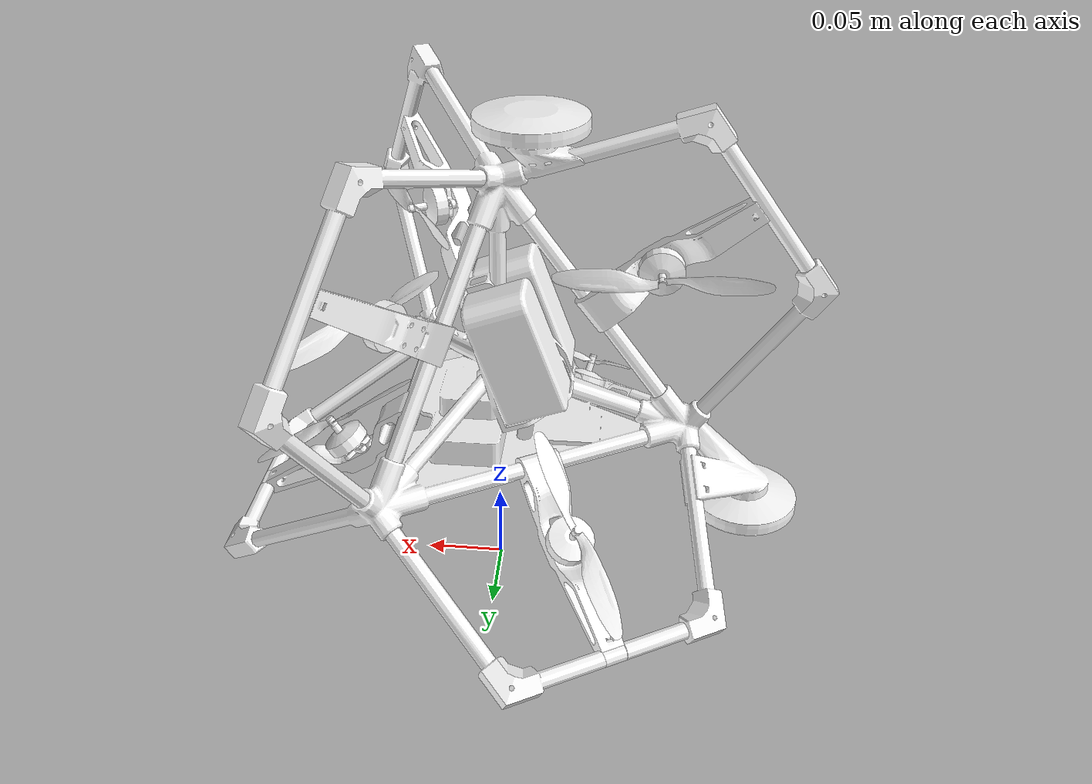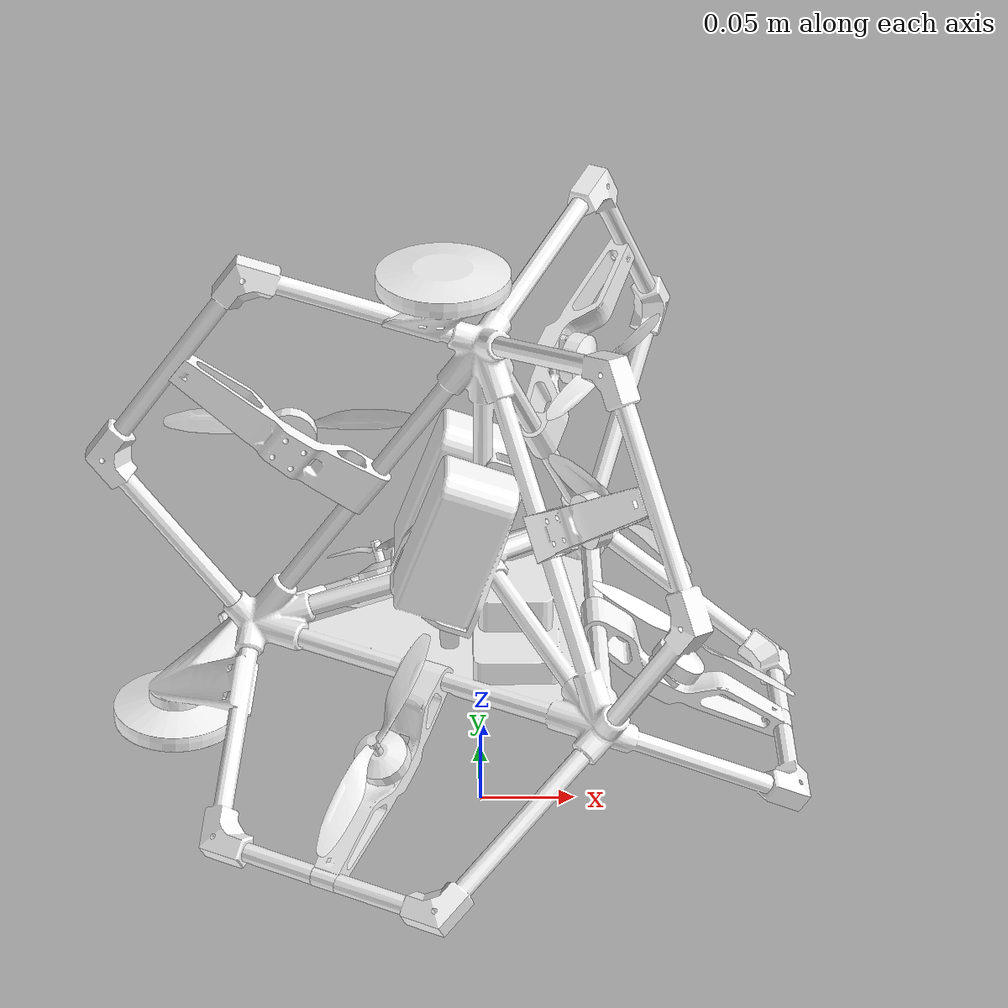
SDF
<sdf version="1.7">
 <world name="omnicopter_runway">
  <plugin filename="gz-sim-physics-system" name="gz::sim::systems::Physics"/>
  <plugin filename="gz-sim-user-commands-system" name="gz::sim::systems::UserCommands"/>
  <plugin filename="gz-sim-scene-broadcaster-system" name="gz::sim::systems::SceneBroadcaster"/>
  <plugin filename="gz-sim-imu-system" name="gz::sim::systems::Imu"/>
  <plugin filename="gz-sim-forcetorque-system" name="gz::sim::systems::ForceTorque"/>
  <scene><ambient>1.0 1.0 1.0</ambient><background>0.8 0.8 0.8</background></scene>
  <light type="directional" name="sun">
   <pose>0 0 10 0 0 0</pose>
   <diffuse>0.8 0.8 0.8 1</diffuse>
   <specular>0.8 0.8 0.8 1</specular>
   <attenuation>
    <range>1000</range>
    <constant>0.9</constant>
    <linear>0.01</linear>
    <quadratic>0.001</quadratic>
   </attenuation>
   <direction>-0.5 0.1 -0.9</direction>
  </light>
  <include><pose>0 0 0.15 0 0 0</pose><uri>model://omnicopter</uri></include>
 </world>
</sdf>

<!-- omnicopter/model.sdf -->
<sdf version='1.7'>
  <model name='omnicopter'>
    <static>0</static>
    <self_collide>0</self_collide>

    <link name='base_link'>
      <inertial>
        <pose>0 0 0 0 0 0</pose>
        <mass>1.5</mass>
        <inertia>
          <ixx>0.009375</ixx>
          <ixy>0</ixy>
          <ixz>0</ixz>
          <iyy>0.009375</iyy>
          <iyz>0</iyz>
          <izz>0.009375</izz>
        </inertia>
      </inertial>
      <collision name='collision'>
        <pose>0 0 0 0 0 0</pose>
        <geometry>
          <box>
            <size>0.25 0.25 0.25</size>
          </box>
        </geometry>
      </collision>
      <visual name='base_visual'>
        <pose>0 0 0 0 0 0</pose>
        <geometry>
          <mesh>
            <scale>1 1 1</scale>
            <uri>model://omnicopter/meshes/omnicopter_base.dae</uri>
          </mesh>
        </geometry>
         <material>
          <ambient>1 1 1</ambient>
          <diffuse>1 1 1</diffuse>
          <specular>0.3 0.3 0.3</specular>
          <pbr>
            <metal>
              <albedo_map>model://omnicopter/materials/textures/plastic006/plastic006_1k_diffuse.jpg</albedo_map>
              <normal_map>model://omnicopter/materials/textures/plastic006/plastic006_1k_normal.jpg</normal_map>
              <roughness_map>model://omnicopter/materials/textures/plastic006/plastic006_1k_roughness.jpg</roughness_map>
              <roughness>0.5</roughness>
              <metalness>0.5</metalness>
            </metal>
          </pbr>
        </material>
     </visual>
      <visual name='tailboom1_visual'>
        <pose>0 0 0 0 0 0</pose>
        <geometry>
          <mesh>
            <scale>1 1 1</scale>
            <uri>model://omnicopter/meshes/tailboom1.dae</uri>
          </mesh>
        </geometry>
        <material>
          <ambient>1 1 1</ambient>
          <diffuse>1 1 1</diffuse>
          <specular>0.3 0.3 0.3</specular>
          <pbr>
            <metal>
              <albedo_map>model://omnicopter/materials/textures/plastic007/plastic007_1k_diffuse.jpg</albedo_map>
              <normal_map>model://omnicopter/materials/textures/plastic007/plastic007_1k_normal.jpg</normal_map>
              <roughness_map>model://omnicopter/materials/textures/plastic007/plastic007_1k_roughness.jpg</roughness_map>
              <roughness>0.5</roughness>
              <metalness>0.5</metalness>
            </metal>
          </pbr>
        </material>
      </visual>
      <visual name='tailboom2_visual'>
        <pose>0 0 0 0 0 0</pose>
        <geometry>
          <mesh>
            <scale>1 1 1</scale>
            <uri>model://omnicopter/meshes/tailboom2.dae</uri>
          </mesh>
        </geometry>
        <material>
          <ambient>1 1 1</ambient>
          <diffuse>1 1 1</diffuse>
          <specular>0.3 0.3 0.3</specular>
          <pbr>
            <metal>
              <albedo_map>model://omnicopter/materials/textures/plastic007/plastic007_1k_diffuse.jpg</albedo_map>
              <normal_map>model://omnicopter/materials/textures/plastic007/plastic007_1k_normal.jpg</normal_map>
              <roughness_map>model://omnicopter/materials/textures/plastic007/plastic007_1k_roughness.jpg</roughness_map>
              <roughness>0.5</roughness>
              <metalness>0.5</metalness>
            </metal>
          </pbr>
        </material>
      </visual>
      <visual name='tailboom3_visual'>
        <pose>0 0 0 0 0 0</pose>
        <geometry>
          <mesh>
            <scale>1 1 1</scale>
            <uri>model://omnicopter/meshes/tailboom3.dae</uri>
          </mesh>
        </geometry>
        <material>
          <ambient>1 1 1</ambient>
          <diffuse>1 1 1</diffuse>
          <specular>0.3 0.3 0.3</specular>
          <pbr>
            <metal>
              <albedo_map>model://omnicopter/materials/textures/plastic007/plastic007_1k_diffuse.jpg</albedo_map>
              <normal_map>model://omnicopter/materials/textures/plastic007/plastic007_1k_normal.jpg</normal_map>
              <roughness_map>model://omnicopter/materials/textures/plastic007/plastic007_1k_roughness.jpg</roughness_map>
              <roughness>0.5</roughness>
              <metalness>0.5</metalness>
            </metal>
          </pbr>
        </material>
      </visual>
      <visual name='tailboom4_visual'>
        <pose>0 0 0 0 0 0</pose>
        <geometry>
          <mesh>
            <scale>1 1 1</scale>
            <uri>model://omnicopter/meshes/tailboom4.dae</uri>
          </mesh>
        </geometry>
        <material>
          <ambient>1 1 1</ambient>
          <diffuse>1 1 1</diffuse>
          <specular>0.3 0.3 0.3</specular>
          <pbr>
            <metal>
              <albedo_map>model://omnicopter/materials/textures/plastic007/plastic007_1k_diffuse.jpg</albedo_map>
              <normal_map>model://omnicopter/materials/textures/plastic007/plastic007_1k_normal.jpg</normal_map>
              <roughness_map>model://omnicopter/materials/textures/plastic007/plastic007_1k_roughness.jpg</roughness_map>
              <roughness>0.5</roughness>
              <metalness>0.5</metalness>
            </metal>
          </pbr>
        </material>
      </visual>
      <visual name='tailboom5_visual'>
        <pose>0 0 0 0 0 0</pose>
        <geometry>
          <mesh>
            <scale>1 1 1</scale>
            <uri>model://omnicopter/meshes/tailboom5.dae</uri>
          </mesh>
        </geometry>
        <material>
          <ambient>1 1 1</ambient>
          <diffuse>1 1 1</diffuse>
          <specular>0.3 0.3 0.3</specular>
          <pbr>
            <metal>
              <albedo_map>model://omnicopter/materials/textures/plastic007/plastic007_1k_diffuse.jpg</albedo_map>
              <normal_map>model://omnicopter/materials/textures/plastic007/plastic007_1k_normal.jpg</normal_map>
              <roughness_map>model://omnicopter/materials/textures/plastic007/plastic007_1k_roughness.jpg</roughness_map>
              <roughness>0.5</roughness>
              <metalness>0.5</metalness>
            </metal>
          </pbr>
        </material>
      </visual>
      <visual name='tailboom6_visual'>
        <pose>0 0 0 0 0 0</pose>
        <geometry>
          <mesh>
            <scale>1 1 1</scale>
            <uri>model://omnicopter/meshes/tailboom6.dae</uri>
          </mesh>
        </geometry>
        <material>
          <ambient>1 1 1</ambient>
          <diffuse>1 1 1</diffuse>
          <specular>0.3 0.3 0.3</specular>
          <pbr>
            <metal>
              <albedo_map>model://omnicopter/materials/textures/plastic007/plastic007_1k_diffuse.jpg</albedo_map>
              <normal_map>model://omnicopter/materials/textures/plastic007/plastic007_1k_normal.jpg</normal_map>
              <roughness_map>model://omnicopter/materials/textures/plastic007/plastic007_1k_roughness.jpg</roughness_map>
              <roughness>0.5</roughness>
              <metalness>0.5</metalness>
            </metal>
          </pbr>
        </material>
      </visual>
    </link>

    <link name='motor_1_link'>
      <pose relative_to='motor_1_joint'>0 0 0.018 0 0 0</pose>
      <inertial>
        <pose>0 0 -0.018 0 0 0</pose>
        <mass>0.025</mass>
        <inertia>
          <ixx>9.75e-06</ixx>
          <ixy>0</ixy>
          <ixz>0</ixz>
          <iyy>0.000166704</iyy>
          <iyz>0</iyz>
          <izz>0.000167604</izz>
        </inertia>
      </inertial>
      <collision name='collision'>
        <pose>0 0 0 0 0 0</pose>
        <geometry>
          <cylinder>
            <length>0.002</length>
            <radius>0.05</radius>
          </cylinder>
        </geometry>
      </collision>
      <visual name='spinner_visual'>
        <pose>0 0 -0.01 0 0 0</pose>
        <geometry>
          <mesh>
            <scale>1 1 1</scale>
            <uri>model://omnicopter/meshes/spinner.dae</uri>
          </mesh>
        </geometry>
        <material>
          <ambient>1 1 1</ambient>
          <diffuse>1 1 1</diffuse>
          <specular>1 1 1</specular>
          <pbr>
            <metal>
              <albedo_map>model://omnicopter/materials/textures/red_metal/red_metal_diffuse.jpg</albedo_map>
              <metalness_map>model://omnicopter/materials/textures/red_metal/red_metal_metallic.jpg</metalness_map>
              <normal_map>model://omnicopter/materials/textures/red_metal/red_metal_normal.jpg</normal_map>
              <roughness_map>model://omnicopter/materials/textures/red_metal/red_metal_roughness.jpg</roughness_map>
              <roughness>1.0</roughness>
              <metalness>1.0</metalness>
            </metal>
          </pbr>
        </material>
      </visual>
      <visual name='prop_visual'>
        <pose>0 0 0 0 0 0</pose>
        <geometry>
          <mesh>
            <scale>0.5 0.5 0.5</scale>
            <uri>model://omnicopter/meshes/iris_prop_cw.dae</uri>
          </mesh>
        </geometry>
        <material>
          <ambient>1 1 1</ambient>
          <diffuse>1 1 1</diffuse>
          <specular>0.3 0.3 0.3</specular>
          <pbr>
            <metal>
              <albedo_map>model://omnicopter/materials/textures/plastic008/plastic008_1k_diffuse.jpg</albedo_map>
              <normal_map>model://omnicopter/materials/textures/plastic008/plastic008_1k_normal.jpg</normal_map>
              <roughness_map>model://omnicopter/materials/textures/plastic008/plastic008_1k_roughness.jpg</roughness_map>
              <roughness>0.5</roughness>
              <metalness>0.5</metalness>
            </metal>
          </pbr>
        </material>
      </visual>
    </link>
    <joint name='motor_1_joint' type='revolute'>
      <pose relative_to='base_link'>0.10147914 0. -0.06590132 0. 0.57595865 0.</pose>
      <parent>base_link</parent>
      <child>motor_1_link</child>
      <axis>
        <xyz>0 0 1</xyz>
        <limit>
          <lower>-1e16</lower>
          <upper>1e16</upper>
        </limit>
        <dynamics>
          <damping>0.002</damping>
        </dynamics>
      </axis>
      <sensor name="force_torque_sensor" type="force_torque">
        <update_rate>30</update_rate>
        <always_on>true</always_on>
        <visualize>true</visualize>
        <force_torque>
          <frame>sensor</frame>
          <measure_direction>child_to_parent</measure_direction>
        </force_torque>
      </sensor>
    </joint>

    <link name='motor_2_link'>
      <pose relative_to='motor_2_joint'>0 0 0.018 0 0 0</pose>
      <inertial>
        <pose>0 0 -0.018 0 0 0</pose>
        <mass>0.025</mass>
        <inertia>
          <ixx>9.75e-06</ixx>
          <ixy>0</ixy>
          <ixz>0</ixz>
          <iyy>0.000166704</iyy>
          <iyz>0</iyz>
          <izz>0.000167604</izz>
        </inertia>
      </inertial>
      <collision name='collision'>
        <pose>0 0 0 0 0 0</pose>
        <geometry>
          <cylinder>
            <length>0.002</length>
            <radius>0.05</radius>
          </cylinder>
        </geometry>
      </collision>
      <visual name='spinner_visual'>
        <pose>0 0 -0.01 0 0 0</pose>
        <geometry>
          <mesh>
            <scale>1 1 1</scale>
            <uri>model://omnicopter/meshes/spinner.dae</uri>
          </mesh>
        </geometry>
        <material>
          <ambient>1 1 1</ambient>
          <diffuse>1 1 1</diffuse>
          <specular>1 1 1</specular>
          <pbr>
            <metal>
              <albedo_map>model://omnicopter/materials/textures/red_metal/red_metal_diffuse.jpg</albedo_map>
              <metalness_map>model://omnicopter/materials/textures/red_metal/red_metal_metallic.jpg</metalness_map>
              <normal_map>model://omnicopter/materials/textures/red_metal/red_metal_normal.jpg</normal_map>
              <roughness_map>model://omnicopter/materials/textures/red_metal/red_metal_roughness.jpg</roughness_map>
              <roughness>1.0</roughness>
              <metalness>1.0</metalness>
            </metal>
          </pbr>
        </material>
      </visual>
      <visual name='prop_visual'>
        <pose>0 0 0 0 0 0</pose>
        <geometry>
          <mesh>
            <scale>0.5 0.5 0.5</scale>
            <uri>model://omnicopter/meshes/iris_prop_cw.dae</uri>
          </mesh>
        </geometry>
        <material>
          <ambient>1 1 1</ambient>
          <diffuse>1 1 1</diffuse>
          <specular>0.3 0.3 0.3</specular>
          <pbr>
            <metal>
              <albedo_map>model://omnicopter/materials/textures/plastic008/plastic008_1k_diffuse.jpg</albedo_map>
              <normal_map>model://omnicopter/materials/textures/plastic008/plastic008_1k_normal.jpg</normal_map>
              <roughness_map>model://omnicopter/materials/textures/plastic008/plastic008_1k_roughness.jpg</roughness_map>
              <roughness>0.5</roughness>
              <metalness>0.5</metalness>
            </metal>
          </pbr>
        </material>
      </visual>
    </link>
    <joint name='motor_2_joint' type='revolute'>
      <pose relative_to='base_link'>-0.05073957 -0.08788351 -0.06590132 3.30947295e-17 5.75958653e-01 -2.09439510e+00</pose>
      <parent>base_link</parent>
      <child>motor_2_link</child>
      <axis>
        <xyz>0 0 1</xyz>
        <limit>
          <lower>-1e16</lower>
          <upper>1e16</upper>
        </limit>
        <dynamics>
          <damping>0.002</damping>
        </dynamics>
      </axis>
      <sensor name="force_torque_sensor" type="force_torque">
        <update_rate>30</update_rate>
        <always_on>true</always_on>
        <visualize>true</visualize>
        <force_torque>
          <frame>sensor</frame>
          <measure_direction>child_to_parent</measure_direction>
        </force_torque>
      </sensor>
    </joint>

    <link name='motor_3_link'>
      <pose relative_to='motor_3_joint'>0 0 0.018 0 0 0</pose>
      <inertial>
        <pose>0 0 -0.018 0 0 0</pose>
        <mass>0.025</mass>
        <inertia>
          <ixx>9.75e-06</ixx>
          <ixy>0</ixy>
          <ixz>0</ixz>
          <iyy>0.000166704</iyy>
          <iyz>0</iyz>
          <izz>0.000167604</izz>
        </inertia>
      </inertial>
      <collision name='collision'>
        <pose>0 0 0 0 0 0</pose>
        <geometry>
          <cylinder>
            <length>0.002</length>
            <radius>0.05</radius>
          </cylinder>
        </geometry>
      </collision>
      <visual name='spinner_visual'>
        <pose>0 0 -0.01 0 0 0</pose>
        <geometry>
          <mesh>
            <scale>1 1 1</scale>
            <uri>model://omnicopter/meshes/spinner.dae</uri>
          </mesh>
        </geometry>
        <material>
          <ambient>1 1 1</ambient>
          <diffuse>1 1 1</diffuse>
          <specular>1 1 1</specular>
          <pbr>
            <metal>
              <albedo_map>model://omnicopter/materials/textures/red_metal/red_metal_diffuse.jpg</albedo_map>
              <metalness_map>model://omnicopter/materials/textures/red_metal/red_metal_metallic.jpg</metalness_map>
              <normal_map>model://omnicopter/materials/textures/red_metal/red_metal_normal.jpg</normal_map>
              <roughness_map>model://omnicopter/materials/textures/red_metal/red_metal_roughness.jpg</roughness_map>
              <roughness>1.0</roughness>
              <metalness>1.0</metalness>
            </metal>
          </pbr>
        </material>
      </visual>
      <visual name='prop_visual'>
        <pose>0 0 0 0 0 0</pose>
        <geometry>
          <mesh>
            <scale>0.5 0.5 0.5</scale>
            <uri>model://omnicopter/meshes/iris_prop_ccw.dae</uri>
          </mesh>
        </geometry>
        <material>
          <ambient>1 1 1</ambient>
          <diffuse>1 1 1</diffuse>
          <specular>0.3 0.3 0.3</specular>
          <pbr>
            <metal>
              <albedo_map>model://omnicopter/materials/textures/plastic008/plastic008_1k_diffuse.jpg</albedo_map>
              <normal_map>model://omnicopter/materials/textures/plastic008/plastic008_1k_normal.jpg</normal_map>
              <roughness_map>model://omnicopter/materials/textures/plastic008/plastic008_1k_roughness.jpg</roughness_map>
              <roughness>0.5</roughness>
              <metalness>0.5</metalness>
            </metal>
          </pbr>
        </material>
      </visual>
    </link>
    <joint name='motor_3_joint' type='revolute'>
      <pose relative_to='base_link'>-0.05073957 0.08788351 -0.06590132 -3.30947295e-17 5.75958653e-01 2.09439510e+00</pose>
      <parent>base_link</parent>
      <child>motor_3_link</child>
      <axis>
        <xyz>0 0 1</xyz>
        <limit>
          <lower>-1e16</lower>
          <upper>1e16</upper>
        </limit>
        <dynamics>
          <damping>0.002</damping>
        </dynamics>
      </axis>
      <sensor name="force_torque_sensor" type="force_torque">
        <update_rate>30</update_rate>
        <always_on>true</always_on>
        <visualize>true</visualize>
        <force_torque>
          <frame>sensor</frame>
          <measure_direction>child_to_parent</measure_direction>
        </force_torque>
      </sensor>
    </joint>

    <link name='motor_4_link'>
      <pose relative_to='motor_4_joint'>0 0 0.018 0 0 0</pose>
      <inertial>
        <pose>0 0 -0.018 0 0 0</pose>
        <mass>0.025</mass>
        <inertia>
          <ixx>9.75e-06</ixx>
          <ixy>0</ixy>
          <ixz>0</ixz>
          <iyy>0.000166704</iyy>
          <iyz>0</iyz>
          <izz>0.000167604</izz>
        </inertia>
      </inertial>
      <collision name='collision'>
        <pose>0 0 0 0 0 0</pose>
        <geometry>
          <cylinder>
            <length>0.002</length>
            <radius>0.05</radius>
          </cylinder>
        </geometry>
      </collision>
      <visual name='spinner_visual'>
        <pose>0 0 -0.01 0 0 0</pose>
        <geometry>
          <mesh>
            <scale>1 1 1</scale>
            <uri>model://omnicopter/meshes/spinner.dae</uri>
          </mesh>
        </geometry>
        <material>
          <ambient>1 1 1</ambient>
          <diffuse>1 1 1</diffuse>
          <specular>1 1 1</specular>
          <pbr>
            <metal>
              <albedo_map>model://omnicopter/materials/textures/red_metal/red_metal_diffuse.jpg</albedo_map>
              <metalness_map>model://omnicopter/materials/textures/red_metal/red_metal_metallic.jpg</metalness_map>
              <normal_map>model://omnicopter/materials/textures/red_metal/red_metal_normal.jpg</normal_map>
              <roughness_map>model://omnicopter/materials/textures/red_metal/red_metal_roughness.jpg</roughness_map>
              <roughness>1.0</roughness>
              <metalness>1.0</metalness>
            </metal>
          </pbr>
        </material>
      </visual>
      <visual name='prop_visual'>
        <pose>0 0 0 0 0 0</pose>
        <geometry>
          <mesh>
            <scale>0.5 0.5 0.5</scale>
            <uri>model://omnicopter/meshes/iris_prop_ccw.dae</uri>
          </mesh>
        </geometry>
        <material>
          <ambient>1 1 1</ambient>
          <diffuse>1 1 1</diffuse>
          <specular>0.3 0.3 0.3</specular>
          <pbr>
            <metal>
              <albedo_map>model://omnicopter/materials/textures/plastic008/plastic008_1k_diffuse.jpg</albedo_map>
              <normal_map>model://omnicopter/materials/textures/plastic008/plastic008_1k_normal.jpg</normal_map>
              <roughness_map>model://omnicopter/materials/textures/plastic008/plastic008_1k_roughness.jpg</roughness_map>
              <roughness>0.5</roughness>
              <metalness>0.5</metalness>
            </metal>
          </pbr>
        </material>
      </visual>
    </link>
    <joint name='motor_4_joint' type='revolute'>
      <pose relative_to='base_link'>0.04894553 -0.08477614 0.07112202 1.57079633 0. 2.0943951</pose>
      <parent>base_link</parent>
      <child>motor_4_link</child>
      <axis>
        <xyz>0 0 1</xyz>
        <limit>
          <lower>-1e16</lower>
          <upper>1e16</upper>
        </limit>
        <dynamics>
          <damping>0.002</damping>
        </dynamics>
      </axis>
      <sensor name="force_torque_sensor" type="force_torque">
        <update_rate>30</update_rate>
        <always_on>true</always_on>
        <visualize>true</visualize>
        <force_torque>
          <frame>sensor</frame>
          <measure_direction>child_to_parent</measure_direction>
        </force_torque>
      </sensor>
    </joint>

    <link name='motor_5_link'>
      <pose relative_to='motor_5_joint'>0 0 0.018 0 0 0</pose>
      <inertial>
        <pose>0 0 -0.018 0 0 0</pose>
        <mass>0.025</mass>
        <inertia>
          <ixx>9.75e-06</ixx>
          <ixy>0</ixy>
          <ixz>0</ixz>
          <iyy>0.000166704</iyy>
          <iyz>0</iyz>
          <izz>0.000167604</izz>
        </inertia>
      </inertial>
      <collision name='collision'>
        <pose>0 0 0 0 0 0</pose>
        <geometry>
          <cylinder>
            <length>0.002</length>
            <radius>0.05</radius>
          </cylinder>
        </geometry>
      </collision>
      <visual name='spinner_visual'>
        <pose>0 0 -0.01 0 0 0</pose>
        <geometry>
          <mesh>
            <scale>1 1 1</scale>
            <uri>model://omnicopter/meshes/spinner.dae</uri>
          </mesh>
        </geometry>
        <material>
          <ambient>1 1 1</ambient>
          <diffuse>1 1 1</diffuse>
          <specular>1 1 1</specular>
          <pbr>
            <metal>
              <albedo_map>model://omnicopter/materials/textures/red_metal/red_metal_diffuse.jpg</albedo_map>
              <metalness_map>model://omnicopter/materials/textures/red_metal/red_metal_metallic.jpg</metalness_map>
              <normal_map>model://omnicopter/materials/textures/red_metal/red_metal_normal.jpg</normal_map>
              <roughness_map>model://omnicopter/materials/textures/red_metal/red_metal_roughness.jpg</roughness_map>
              <roughness>1.0</roughness>
              <metalness>1.0</metalness>
            </metal>
          </pbr>
        </material>
      </visual>
      <visual name='prop_visual'>
        <pose>0 0 0 0 0 0</pose>
        <geometry>
          <mesh>
            <scale>0.5 0.5 0.5</scale>
            <uri>model://omnicopter/meshes/iris_prop_ccw.dae</uri>
          </mesh>
        </geometry>
        <material>
          <ambient>1 1 1</ambient>
          <diffuse>1 1 1</diffuse>
          <specular>0.3 0.3 0.3</specular>
          <pbr>
            <metal>
              <albedo_map>model://omnicopter/materials/textures/plastic008/plastic008_1k_diffuse.jpg</albedo_map>
              <normal_map>model://omnicopter/materials/textures/plastic008/plastic008_1k_normal.jpg</normal_map>
              <roughness_map>model://omnicopter/materials/textures/plastic008/plastic008_1k_roughness.jpg</roughness_map>
              <roughness>0.5</roughness>
              <metalness>0.5</metalness>
            </metal>
          </pbr>
        </material>
      </visual>
    </link>
    <joint name='motor_5_joint' type='revolute'>
      <pose relative_to='base_link'>-0.09789106 0. 0.07112202 -1.57079633 0. 0.</pose>
      <parent>base_link</parent>
      <child>motor_5_link</child>
      <axis>
        <xyz>0 0 1</xyz>
        <limit>
          <lower>-1e16</lower>
          <upper>1e16</upper>
        </limit>
        <dynamics>
          <damping>0.002</damping>
        </dynamics>
      </axis>
      <sensor name="force_torque_sensor" type="force_torque">
        <update_rate>30</update_rate>
        <always_on>true</always_on>
        <visualize>true</visualize>
        <force_torque>
          <frame>sensor</frame>
          <measure_direction>child_to_parent</measure_direction>
        </force_torque>
      </sensor>
    </joint>

    <link name='motor_6_link'>
      <pose relative_to='motor_6_joint'>0 0 0.018 0 0 0</pose>
      <inertial>
        <pose>0 0 -0.018 0 0 0</pose>
        <mass>0.025</mass>
        <inertia>
          <ixx>9.75e-06</ixx>
          <ixy>0</ixy>
          <ixz>0</ixz>
          <iyy>0.000166704</iyy>
          <iyz>0</iyz>
          <izz>0.000167604</izz>
        </inertia>
      </inertial>
      <collision name='collision'>
        <pose>0 0 0 0 0 0</pose>
        <geometry>
          <cylinder>
            <length>0.002</length>
            <radius>0.05</radius>
          </cylinder>
        </geometry>
      </collision>
      <visual name='spinner_visual'>
        <pose>0 0 -0.01 0 0 0</pose>
        <geometry>
          <mesh>
            <scale>1 1 1</scale>
            <uri>model://omnicopter/meshes/spinner.dae</uri>
          </mesh>
        </geometry>
        <material>
          <ambient>1 1 1</ambient>
          <diffuse>1 1 1</diffuse>
          <specular>1 1 1</specular>
          <pbr>
            <metal>
              <albedo_map>model://omnicopter/materials/textures/red_metal/red_metal_diffuse.jpg</albedo_map>
              <metalness_map>model://omnicopter/materials/textures/red_metal/red_metal_metallic.jpg</metalness_map>
              <normal_map>model://omnicopter/materials/textures/red_metal/red_metal_normal.jpg</normal_map>
              <roughness_map>model://omnicopter/materials/textures/red_metal/red_metal_roughness.jpg</roughness_map>
              <roughness>1.0</roughness>
              <metalness>1.0</metalness>
            </metal>
          </pbr>
        </material>
      </visual>
      <visual name='prop_visual'>
        <pose>0 0 0 0 0 0</pose>
        <geometry>
          <mesh>
            <scale>0.5 0.5 0.5</scale>
            <uri>model://omnicopter/meshes/iris_prop_ccw.dae</uri>
          </mesh>
        </geometry>
        <material>
          <ambient>1 1 1</ambient>
          <diffuse>1 1 1</diffuse>
          <specular>0.3 0.3 0.3</specular>
          <pbr>
            <metal>
              <albedo_map>model://omnicopter/materials/textures/plastic008/plastic008_1k_diffuse.jpg</albedo_map>
              <normal_map>model://omnicopter/materials/textures/plastic008/plastic008_1k_normal.jpg</normal_map>
              <roughness_map>model://omnicopter/materials/textures/plastic008/plastic008_1k_roughness.jpg</roughness_map>
              <roughness>0.5</roughness>
              <metalness>0.5</metalness>
            </metal>
          </pbr>
        </material>
      </visual>
    </link>
    <joint name='motor_6_joint' type='revolute'>
      <pose relative_to='base_link'>0.04894553 0.08477614 0.07112202 -1.57079633 0. -2.0943951</pose>
      <parent>base_link</parent>
      <child>motor_6_link</child>
      <axis>
        <xyz>0 0 1</xyz>
        <limit>
          <lower>-1e16</lower>
          <upper>1e16</upper>
        </limit>
        <dynamics>
          <damping>0.002</damping>
        </dynamics>
      </axis>
      <sensor name="force_torque_sensor" type="force_torque">
        <update_rate>30</update_rate>
        <always_on>true</always_on>
        <visualize>true</visualize>
        <force_torque>
          <frame>sensor</frame>
          <measure_direction>child_to_parent</measure_direction>
        </force_torque>
      </sensor>
    </joint>

    <!-- sensors -->
    <link name='imu_link'>
      <inertial>
        <pose>0 0 0 0 0 0</pose>
        <mass>0.15</mass>
        <inertia>
          <ixx>0.00002</ixx>
          <ixy>0</ixy>
          <ixz>0</ixz>
          <iyy>0.00002</iyy>
          <iyz>0</iyz>
          <izz>0.00002</izz>
        </inertia>
      </inertial>
      <sensor name="imu_sensor" type="imu">
        <pose>0 0 0 3.141593 0 0</pose>
        <always_on>1</always_on>
        <update_rate>1000.0</update_rate>
      </sensor>
    </link>
    <joint name='imu_joint' type='revolute'>
      <child>imu_link</child>
      <parent>base_link</parent>
      <axis>
        <xyz>0 0 1</xyz>
        <limit>
          <lower>0</lower>
          <upper>0</upper>
          <effort>0</effort>
          <velocity>0</velocity>
        </limit>
        <dynamics>
          <damping>1.0</damping>
        </dynamics>
        <use_parent_model_frame>1</use_parent_model_frame>
      </axis>
    </joint>

    <!-- plugins -->
    <plugin filename="gz-sim-joint-state-publisher-system"
      name="gz::sim::systems::JointStatePublisher">
    </plugin>
    <plugin filename="gz-sim-apply-joint-force-system"
      name="gz::sim::systems::ApplyJointForce">
      <joint_name>motor_1_joint</joint_name>
    </plugin>
    <plugin filename="gz-sim-apply-joint-force-system"
      name="gz::sim::systems::ApplyJointForce">
      <joint_name>motor_2_joint</joint_name>
    </plugin>
    <plugin filename="gz-sim-apply-joint-force-system"
      name="gz::sim::systems::ApplyJointForce">
      <joint_name>motor_3_joint</joint_name>
    </plugin>
    <plugin filename="gz-sim-apply-joint-force-system"
      name="gz::sim::systems::ApplyJointForce">
      <joint_name>motor_4_joint</joint_name>
    </plugin>
    <plugin filename="gz-sim-apply-joint-force-system"
      name="gz::sim::systems::ApplyJointForce">
      <joint_name>motor_5_joint</joint_name>
    </plugin>
    <plugin filename="gz-sim-apply-joint-force-system"
      name="gz::sim::systems::ApplyJointForce">
      <joint_name>motor_6_joint</joint_name>
    </plugin>

    <!-- prop motor_1 (cw) lift-drag -->
    <plugin filename="gz-sim-lift-drag-system"
        name="gz::sim::systems::LiftDrag">
      <a0>0.3</a0>
      <alpha_stall>1.4</alpha_stall>
      <cla>4.2500</cla>
      <cda>0.10</cda>
      <cma>0.00</cma>
      <cla_stall>-0.025</cla_stall>
      <cda_stall>0.0</cda_stall>
      <cma_stall>0.0</cma_stall>
      <area>0.003</area>
      <air_density>1.2041</air_density>
      <cp>0.05 0 0</cp>
      <forward>0 -1 0</forward>
      <upward>0 0 1</upward>
      <link_name>motor_1_link</link_name>
    </plugin>
    <plugin filename="gz-sim-lift-drag-system"
        name="gz::sim::systems::LiftDrag">
      <a0>0.3</a0>
      <alpha_stall>1.4</alpha_stall>
      <cla>4.2500</cla>
      <cda>0.10</cda>
      <cma>0.00</cma>
      <cla_stall>-0.025</cla_stall>
      <cda_stall>0.0</cda_stall>
      <cma_stall>0.0</cma_stall>
      <area>0.003</area>
      <air_density>1.2041</air_density>
      <cp>-0.05 0 0</cp>
      <forward>0 1 0</forward>
      <upward>0 0 1</upward>
      <link_name>motor_1_link</link_name>
    </plugin>

    <!-- prop motor_2 (cw) lift-drag -->
    <plugin filename="gz-sim-lift-drag-system"
        name="gz::sim::systems::LiftDrag">
      <a0>0.3</a0>
      <alpha_stall>1.4</alpha_stall>
      <cla>4.2500</cla>
      <cda>0.10</cda>
      <cma>0.00</cma>
      <cla_stall>-0.025</cla_stall>
      <cda_stall>0.0</cda_stall>
      <cma_stall>0.0</cma_stall>
      <area>0.003</area>
      <air_density>1.2041</air_density>
      <cp>0.05 0 0</cp>
      <forward>0 -1 0</forward>
      <upward>0 0 1</upward>
      <link_name>motor_2_link</link_name>
    </plugin>
    <plugin filename="gz-sim-lift-drag-system"
        name="gz::sim::systems::LiftDrag">
      <a0>0.3</a0>
      <alpha_stall>1.4</alpha_stall>
      <cla>4.2500</cla>
      <cda>0.10</cda>
      <cma>0.00</cma>
      <cla_stall>-0.025</cla_stall>
      <cda_stall>0.0</cda_stall>
      <cma_stall>0.0</cma_stall>
      <area>0.003</area>
      <air_density>1.2041</air_density>
      <cp>-0.05 0 0</cp>
      <forward>0 1 0</forward>
      <upward>0 0 1</upward>
      <link_name>motor_2_link</link_name>
    </plugin>

    <!-- prop motor_3 (ccw) lift-drag -->
    <plugin filename="gz-sim-lift-drag-system"
        name="gz::sim::systems::LiftDrag">
      <a0>0.3</a0>
      <alpha_stall>1.4</alpha_stall>
      <cla>4.2500</cla>
      <cda>0.10</cda>
      <cma>0.00</cma>
      <cla_stall>-0.025</cla_stall>
      <cda_stall>0.0</cda_stall>
      <cma_stall>0.0</cma_stall>
      <area>0.003</area>
      <air_density>1.2041</air_density>
      <cp>0.05 0 0</cp>
      <forward>0 1 0</forward>
      <upward>0 0 1</upward>
      <link_name>motor_3_link</link_name>
    </plugin>
    <plugin filename="gz-sim-lift-drag-system"
        name="gz::sim::systems::LiftDrag">
      <a0>0.3</a0>
      <alpha_stall>1.4</alpha_stall>
      <cla>4.2500</cla>
      <cda>0.10</cda>
      <cma>0.00</cma>
      <cla_stall>-0.025</cla_stall>
      <cda_stall>0.0</cda_stall>
      <cma_stall>0.0</cma_stall>
      <area>0.003</area>
      <air_density>1.2041</air_density>
      <cp>-0.05 0 0</cp>
      <forward>0 -1 0</forward>
      <upward>0 0 1</upward>
      <link_name>motor_3_link</link_name>
    </plugin>

    <!-- prop motor_4 (ccw) lift-drag -->
    <plugin filename="gz-sim-lift-drag-system"
        name="gz::sim::systems::LiftDrag">
      <a0>0.3</a0>
      <alpha_stall>1.4</alpha_stall>
      <cla>4.2500</cla>
      <cda>0.10</cda>
      <cma>0.00</cma>
      <cla_stall>-0.025</cla_stall>
      <cda_stall>0.0</cda_stall>
      <cma_stall>0.0</cma_stall>
      <area>0.003</area>
      <air_density>1.2041</air_density>
      <cp>0.05 0 0</cp>
      <forward>0 1 0</forward>
      <upward>0 0 1</upward>
      <link_name>motor_4_link</link_name>
    </plugin>
    <plugin filename="gz-sim-lift-drag-system"
        name="gz::sim::systems::LiftDrag">
      <a0>0.3</a0>
      <alpha_stall>1.4</alpha_stall>
      <cla>4.2500</cla>
      <cda>0.10</cda>
      <cma>0.00</cma>
      <cla_stall>-0.025</cla_stall>
      <cda_stall>0.0</cda_stall>
      <cma_stall>0.0</cma_stall>
      <area>0.003</area>
      <air_density>1.2041</air_density>
      <cp>-0.05 0 0</cp>
      <forward>0 -1 0</forward>
      <upward>0 0 1</upward>
      <link_name>motor_4_link</link_name>
    </plugin>

    <!-- prop motor_5 (cw) lift-drag -->
    <plugin filename="gz-sim-lift-drag-system"
        name="gz::sim::systems::LiftDrag">
      <a0>0.3</a0>
      <alpha_stall>1.4</alpha_stall>
      <cla>4.2500</cla>
      <cda>0.10</cda>
      <cma>0.00</cma>
      <cla_stall>-0.025</cla_stall>
      <cda_stall>0.0</cda_stall>
      <cma_stall>0.0</cma_stall>
      <area>0.003</area>
      <air_density>1.2041</air_density>
      <cp>0.05 0 0</cp>
      <forward>0 -1 0</forward>
      <upward>0 0 1</upward>
      <link_name>motor_5_link</link_name>
    </plugin>
    <plugin filename="gz-sim-lift-drag-system"
        name="gz::sim::systems::LiftDrag">
      <a0>0.3</a0>
      <alpha_stall>1.4</alpha_stall>
      <cla>4.2500</cla>
      <cda>0.10</cda>
      <cma>0.00</cma>
      <cla_stall>-0.025</cla_stall>
      <cda_stall>0.0</cda_stall>
      <cma_stall>0.0</cma_stall>
      <area>0.003</area>
      <air_density>1.2041</air_density>
      <cp>-0.05 0 0</cp>
      <forward>0 1 0</forward>
      <upward>0 0 1</upward>
      <link_name>motor_5_link</link_name>
    </plugin>

    <!-- prop motor_6 (ccw) lift-drag -->
    <plugin filename="gz-sim-lift-drag-system"
        name="gz::sim::systems::LiftDrag">
      <a0>0.3</a0>
      <alpha_stall>1.4</alpha_stall>
      <cla>4.2500</cla>
      <cda>0.10</cda>
      <cma>0.00</cma>
      <cla_stall>-0.025</cla_stall>
      <cda_stall>0.0</cda_stall>
      <cma_stall>0.0</cma_stall>
      <area>0.003</area>
      <air_density>1.2041</air_density>
      <cp>0.05 0 0</cp>
      <forward>0 1 0</forward>
      <upward>0 0 1</upward>
      <link_name>motor_6_link</link_name>
    </plugin>
    <plugin filename="gz-sim-lift-drag-system"
        name="gz::sim::systems::LiftDrag">
      <a0>0.3</a0>
      <alpha_stall>1.4</alpha_stall>
      <cla>4.2500</cla>
      <cda>0.10</cda>
      <cma>0.00</cma>
      <cla_stall>-0.025</cla_stall>
      <cda_stall>0.0</cda_stall>
      <cma_stall>0.0</cma_stall>
      <area>0.003</area>
      <air_density>1.2041</air_density>
      <cp>-0.05 0 0</cp>
      <forward>0 -1 0</forward>
      <upward>0 0 1</upward>
      <link_name>motor_6_link</link_name>
    </plugin>

    <plugin name="ArduPilotPlugin" filename="ArduPilotPlugin">
      <!-- Port settings -->
      <fdm_addr>127.0.0.1</fdm_addr>
      <fdm_port_in>9002</fdm_port_in>
      <connectionTimeoutMaxCount>5</connectionTimeoutMaxCount>
      <lock_step>1</lock_step>

      <modelXYZToAirplaneXForwardZDown>0 0 0 3.141593 0 0</modelXYZToAirplaneXForwardZDown>
      <gazeboXYZToNED>0 0 0 3.141593 0 0</gazeboXYZToNED>

      <!-- Sensors -->
      <imuName>imu_link::imu_sensor</imuName>

      <!--
          SERVO1_FUNCTION   33 (Motor 1 CW)
          SERVO1_MAX        2000
          SERVO1_MIN        1000
          SERVO1_REVERSED   0
          SERVO1_TRIM       1500
       -->
      <control channel="0">
        <jointName>motor_1_joint</jointName>
        <useForce>1</useForce>
        <multiplier>-2762</multiplier>
        <offset>-0.5</offset>
        <servo_min>1000</servo_min>
        <servo_max>2000</servo_max>
        <type>VELOCITY</type>
        <p_gain>0.25</p_gain>
        <i_gain>0</i_gain>
        <d_gain>0</d_gain>
        <i_max>-1</i_max>
        <i_min>0</i_min>
        <cmd_max>2.5</cmd_max>
        <cmd_min>-2.5</cmd_min>
      </control>

      <!--
          SERVO2_FUNCTION   34 (Motor 2 CW)
          SERVO2_MAX        2000
          SERVO2_MIN        1000
          SERVO2_REVERSED   0
          SERVO2_TRIM       1500
       -->
      <control channel="1">
        <jointName>motor_2_joint</jointName>
        <useForce>1</useForce>
        <multiplier>-2762</multiplier>
        <offset>-0.5</offset>
        <servo_min>1000</servo_min>
        <servo_max>2000</servo_max>
        <type>VELOCITY</type>
        <p_gain>0.25</p_gain>
        <i_gain>0</i_gain>
        <d_gain>0</d_gain>
        <i_max>-1</i_max>
        <i_min>0</i_min>
        <cmd_max>2.5</cmd_max>
        <cmd_min>-2.5</cmd_min>
      </control>

      <!--
          SERVO3_FUNCTION   35 (Motor 3 CCW)
          SERVO3_MAX        2000
          SERVO3_MIN        1000
          SERVO3_REVERSED   0
          SERVO3_TRIM       1500
       -->
      <control channel="2">
        <jointName>motor_3_joint</jointName>
        <useForce>1</useForce>
        <multiplier>2762</multiplier>
        <offset>-0.5</offset>
        <servo_min>1000</servo_min>
        <servo_max>2000</servo_max>
        <type>VELOCITY</type>
        <p_gain>0.25</p_gain>
        <i_gain>0</i_gain>
        <d_gain>0</d_gain>
        <i_max>-1</i_max>
        <i_min>0</i_min>
        <cmd_max>2.5</cmd_max>
        <cmd_min>-2.5</cmd_min>
      </control>

      <!--
          SERVO4_FUNCTION   36 (Motor 4 CCW)
          SERVO4_MAX        2000
          SERVO4_MIN        1000
          SERVO4_REVERSED   0
          SERVO4_TRIM       1500
       -->
      <control channel="3">
        <jointName>motor_4_joint</jointName>
        <useForce>1</useForce>
        <multiplier>2762</multiplier>
        <offset>-0.5</offset>
        <servo_min>1000</servo_min>
        <servo_max>2000</servo_max>
        <type>VELOCITY</type>
        <p_gain>0.25</p_gain>
        <i_gain>0</i_gain>
        <d_gain>0</d_gain>
        <i_max>-1</i_max>
        <i_min>0</i_min>
        <cmd_max>2.5</cmd_max>
        <cmd_min>-2.5</cmd_min>
      </control>

      <!--
          SERVO5_FUNCTION   37 (Motor 5 CW)
          SERVO5_MAX        2000
          SERVO5_MIN        1000
          SERVO5_REVERSED   0
          SERVO5_TRIM       1500
       -->
      <control channel="4">
        <jointName>motor_5_joint</jointName>
        <useForce>1</useForce>
        <multiplier>-2762</multiplier>
        <offset>-0.5</offset>
        <servo_min>1000</servo_min>
        <servo_max>2000</servo_max>
        <type>VELOCITY</type>
        <p_gain>0.25</p_gain>
        <i_gain>0</i_gain>
        <d_gain>0</d_gain>
        <i_max>-1</i_max>
        <i_min>0</i_min>
        <cmd_max>2.5</cmd_max>
        <cmd_min>-2.5</cmd_min>
      </control>

      <!--
          SERVO6_FUNCTION   38 (Motor 6 CCW)
          SERVO6_MAX        2000
          SERVO6_MIN        1000
          SERVO6_REVERSED   0
          SERVO6_TRIM       1500
       -->
      <control channel="5">
        <jointName>motor_6_joint</jointName>
        <useForce>1</useForce>
        <multiplier>2762</multiplier>
        <offset>-0.5</offset>
        <servo_min>1000</servo_min>
        <servo_max>2000</servo_max>
        <type>VELOCITY</type>
        <p_gain>0.25</p_gain>
        <i_gain>0</i_gain>
        <d_gain>0</d_gain>
        <i_max>-1</i_max>
        <i_min>0</i_min>
        <cmd_max>2.5</cmd_max>
        <cmd_min>-2.5</cmd_min>
      </control>

    </plugin>

  </model>
</sdf>
